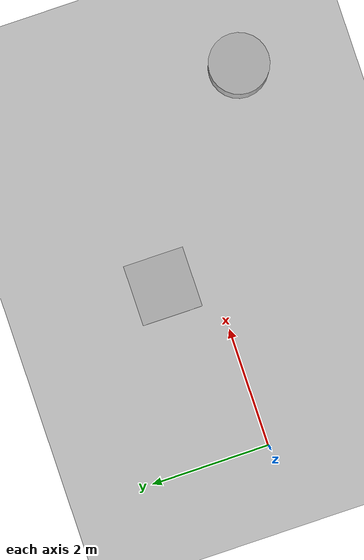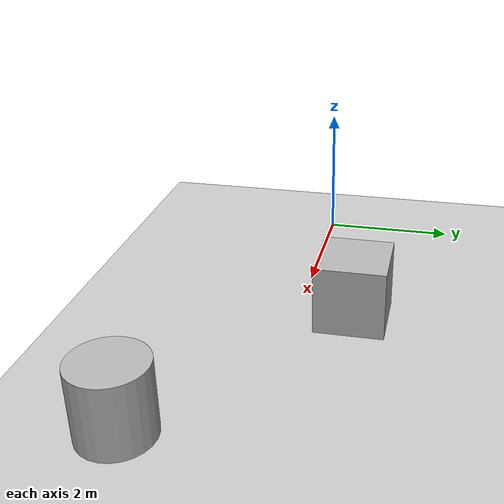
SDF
<?xml version="1.0" ?>
<sdf version="1.4">
  <world name="default">
    <!-- A ground plane -->
    <include>
      <uri>model://ground_plane</uri>
    </include>
    <!-- A global light source -->
    <include>
      <uri>model://sun</uri>
    </include>
    <model name="model_1">
      <static>true</static>
      <pose>0 0 0.5 0. 0 0</pose>
      <link name="link_1">
        <inertial>
          <mass>0.1</mass>
        </inertial>
        <visual name="visual">
          <geometry>
            <mesh>
              <uri>model://hokuyo/meshes/hokuyo.dae</uri>
            </mesh>
          </geometry>
        </visual>
        <collision name="collision-base">
          <pose>0 0 -0.0145 0 0 0</pose>
          <geometry>
            <box>
              <size>0.05 0.05 0.041</size>
            </box>
          </geometry>
        </collision>
        <collision name="collision-top">
          <pose>0 0 0.0205 0 0 0</pose>
          <geometry>
            <cylinder>
              <radius>0.021</radius>
              <length>0.029</length>
            </cylinder>
          </geometry>
        </collision>
        <sensor name="laser_sensor" type="ray">
          <pose>0.1 0 0.0175 0 -0 0</pose>
          <ray>
            <scan>
              <horizontal>
                <samples>320</samples>
                <resolution>1</resolution>
                <min_angle>-1.0</min_angle>
                <max_angle>1.0</max_angle>
              </horizontal>
              <vertical>
                <samples>3</samples>
                <resolution>1</resolution>
                <min_angle>-0.1</min_angle>
                <max_angle>0.1</max_angle>
              </vertical>
            </scan>
            <range>
              <min>0.08</min>
              <max>10.0</max>
              <resolution>0.01</resolution>
            </range>
          </ray>
          <always_on>1</always_on>
          <update_rate>30</update_rate>
          <visualize>true</visualize>
        </sensor>
      </link>
    </model>

    <!-- a static object -->
    <model name="cylinder_model">
      <static>true</static>
      <pose>6 -1.5 0 0 0 0</pose>
      <link name="cylinder_link">
        <visual name="cylinder_visual">
          <pose>0 0 0.5 0 0 0</pose>
          <geometry>
            <cylinder>
              <radius>0.5</radius>
              <length>1.0</length>
            </cylinder>
          </geometry>
        </visual>
        <collision name="cylinder_collision">
          <pose>0 0 0.5 0 0 0</pose>
          <geometry>
            <cylinder>
              <radius>0.5</radius>
              <length>1.0</length>
            </cylinder>
          </geometry>
        </collision>
      </link>
    </model>

    <!-- a non-static object -->
    <model name="box_model">
      <static>false</static>
      <pose>3 0.8 0 0 0 0</pose>
      <link name="box_link">
        <visual name="box_visual">
          <pose>0 0 0.5 0 0 0</pose>
          <geometry>
            <box>
            <size>1.0 1.0 1.0</size>
            </box>
          </geometry>
        </visual>
        <collision name="box_collision">
          <pose>0 0 0.5 0 0 0</pose>
          <geometry>
            <box>
            <size>1.0 1.0 1.0</size>
            </box>
          </geometry>
        </collision>
      </link>
    </model>
  </world>
</sdf>
